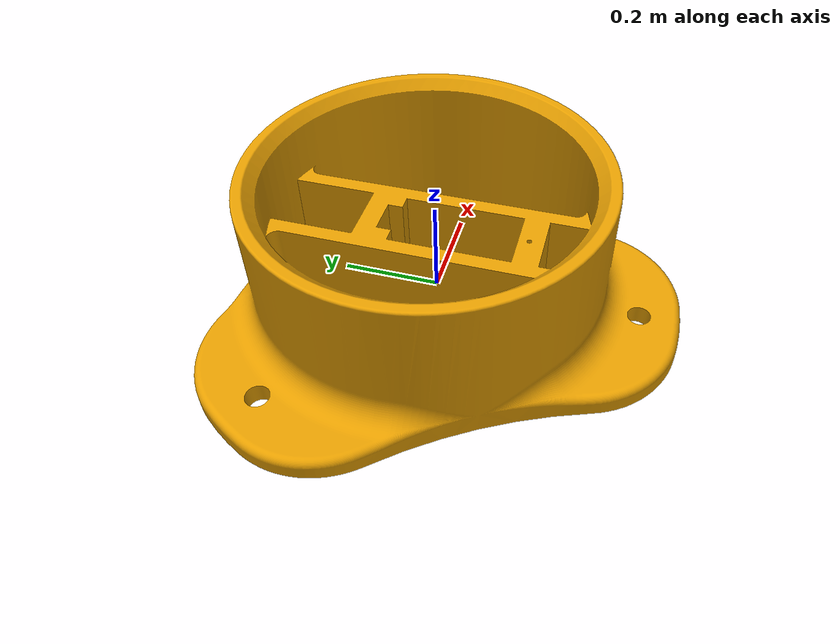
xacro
<?xml version="1.0"?>
<robot xmlns:xacro="http://www.ros.org/wiki/xacro" name="arduinobot">

    <!-- Inertial Macro -->
    <xacro:macro name="default_inertial" params="mass">
        <inertial>
            <origin xyz="0 0 0" rpy="0 0 0"/>
            <mass value="${mass}" />
            <inertia ixx="1.0" ixy="0.0" ixz="0.0"
                     iyy="1.0" iyz="0.0"
                     izz="1.0" />
        </inertial>
    </xacro:macro>

    <!--            BASE LINK             -->
    <link name="base_link">
        <xacro:default_inertial mass="1.0"/>

        <visual>
            <origin rpy="0 0 0" xyz="-0.5 -0.5 0"/>
            <geometry>
                <mesh filename="package://arduinobot_description/meshes/basement.STL"
                      scale="0.01 0.01 0.01"/>
            </geometry>
        </visual>

        <collision>
            <origin rpy="0 0 0" xyz="-0.5 -0.5 0"/>
            <geometry>
                <mesh filename="package://arduinobot_description/meshes/basement.STL"
                      scale="0.01 0.01 0.01"/>
            </geometry>
        </collision>
    </link>

</robot>
